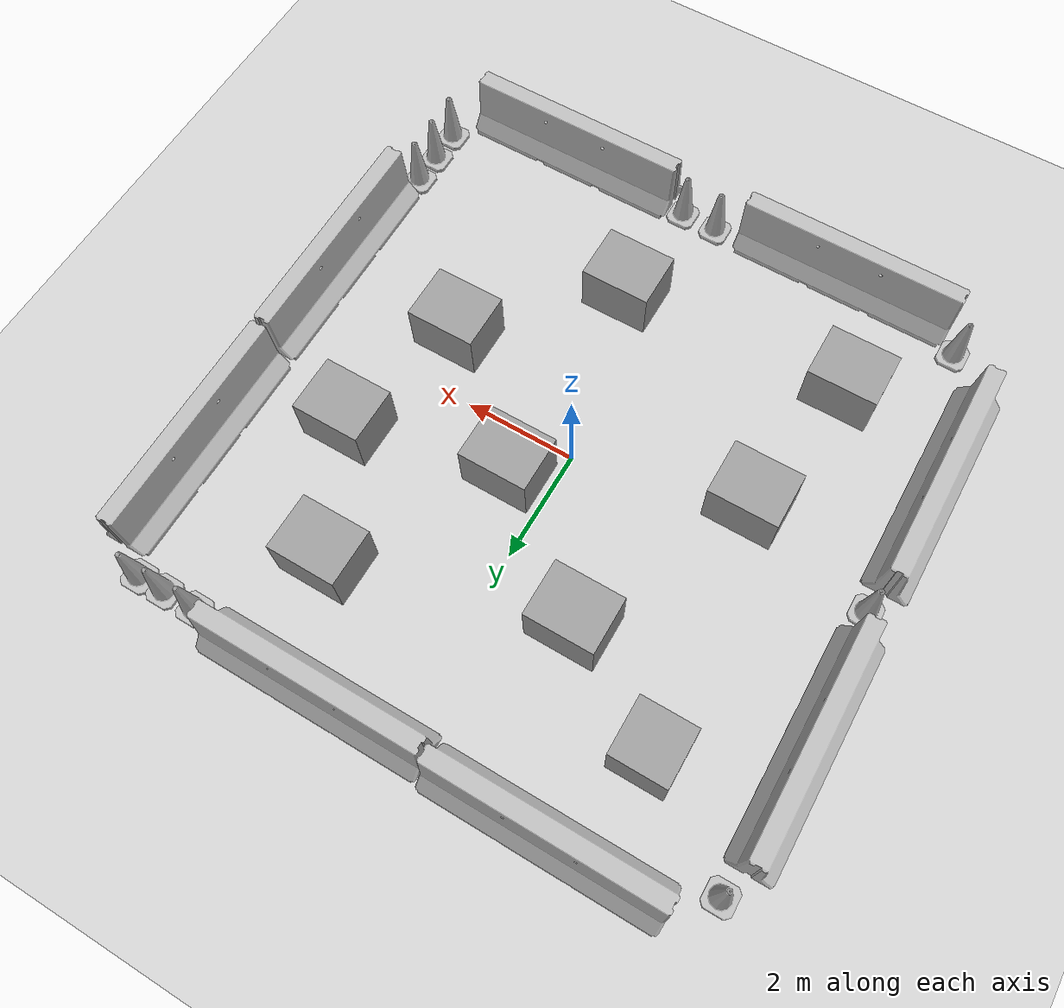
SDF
<sdf version="1.6">
 <world name="default">
  <light name="sun" type="directional">
   <pose>0 0 10 0 -0 0</pose>
   <diffuse>0.8 0.8 0.8 1</diffuse>
   <specular>0.2 0.2 0.2 1</specular>
   <attenuation>
    <range>1000</range>
    <constant>0.9</constant>
    <linear>0.01</linear>
    <quadratic>0.001</quadratic>
   </attenuation>
   <direction>-0.5 0.1 -0.9</direction>
  </light>
  <model name="ground_plane">
   <static>1</static>
   <link name="link">
    <collision name="collision">
     <geometry><plane><normal>0 0 1</normal><size>100 100</size></plane></geometry>
     <surface>
      <contact><collide_bitmask>65535</collide_bitmask></contact>
      <friction><ode><mu>100</mu><mu2>50</mu2></ode></friction>
     </surface>
    </collision>
    <visual name="visual">
     <cast_shadows>0</cast_shadows>
     <geometry><plane><normal>0 0 1</normal><size>100 100</size></plane></geometry>
     <material>
      <script><uri>file://media/materials/scripts/gazebo.material</uri><name>Gazebo/Grey</name></script>
     </material>
    </visual>
   </link>
  </model>
  <gravity>0 0 -9.8</gravity>
  <magnetic_field>6e-06 2.3e-05 -4.2e-05</magnetic_field>
  <atmosphere type="adiabatic"/>
  <physics name="default_physics" default="0" type="ode">
   <max_step_size>0.001</max_step_size>
   <real_time_factor>1</real_time_factor>
   <real_time_update_rate>1000</real_time_update_rate>
  </physics>
  <scene><ambient>0.4 0.4 0.4 1</ambient><background>0.7 0.7 0.7 1</background><shadows>1</shadows></scene>
  <spherical_coordinates>
   <surface_model>EARTH_WGS84</surface_model>
   <latitude_deg>0</latitude_deg>
   <longitude_deg>0</longitude_deg>
   <elevation>0</elevation>
   <heading_deg>0</heading_deg>
  </spherical_coordinates>
  <model name="jersey_barrier">
   <static>1</static>
   <link name="link">
    <visual name="visual">
     <geometry><mesh><uri>model://jersey_barrier/meshes/jersey_barrier.dae</uri></mesh></geometry>
    </visual>
    <collision name="upright">
     <pose>0 0 0.5715 0 -0 0</pose>
     <geometry><box><size>4.06542 0.3063 1.143</size></box></geometry>
    </collision>
    <collision name="base">
     <pose>0 0 0.032258 0 -0 0</pose>
     <geometry><box><size>4.06542 0.8107 0.064516</size></box></geometry>
    </collision>
    <collision name="base2">
     <pose>0 0 0.1 0 -0 0</pose>
     <geometry><box><size>4.06542 0.65 0.1</size></box></geometry>
    </collision>
    <collision name="base3">
     <pose>0 0 0.2 0 -0 0</pose>
     <geometry><box><size>4.06542 0.5 0.1</size></box></geometry>
    </collision>
    <collision name="left-angle">
     <pose>0 -0.224 0.2401 0.9 -0 0</pose>
     <geometry><box><size>4.06542 0.5 0.064516</size></box></geometry>
    </collision>
    <collision name="right-angle">
     <pose>0 0.224 0.2401 -0.9 0 0</pose>
     <geometry><box><size>4.06542 0.5 0.064516</size></box></geometry>
    </collision>
   </link>
   <pose>-2.71751 5.43697 0 0 -0 0</pose>
  </model>
  <model name="unit_box">
   <pose>2.46443 3.52051 0.5 0 -0 0</pose>
   <link name="link">
    <inertial>
     <mass>1</mass>
     <inertia>
      <ixx>0.166667</ixx>
      <ixy>0</ixy>
      <ixz>0</ixz>
      <iyy>0.166667</iyy>
      <iyz>0</iyz>
      <izz>0.166667</izz>
     </inertia>
    </inertial>
    <collision name="collision"><geometry><box><size>1.23573 1 1</size></box></geometry></collision>
    <visual name="visual">
     <geometry><box><size>1.23573 1 1</size></box></geometry>
     <material>
      <script><name>Gazebo/Grey</name><uri>file://media/materials/scripts/gazebo.material</uri></script>
     </material>
    </visual>
   </link>
  </model>
  <model name="jersey_barrier_clone">
   <static>1</static>
   <link name="link">
    <visual name="visual">
     <geometry><mesh><uri>model://jersey_barrier/meshes/jersey_barrier.dae</uri></mesh></geometry>
    </visual>
    <collision name="upright">
     <pose>0 0 0.5715 0 -0 0</pose>
     <geometry><box><size>4.06542 0.3063 1.143</size></box></geometry>
    </collision>
    <collision name="base">
     <pose>0 0 0.032258 0 -0 0</pose>
     <geometry><box><size>4.06542 0.8107 0.064516</size></box></geometry>
    </collision>
    <collision name="base2">
     <pose>0 0 0.1 0 -0 0</pose>
     <geometry><box><size>4.06542 0.65 0.1</size></box></geometry>
    </collision>
    <collision name="base3">
     <pose>0 0 0.2 0 -0 0</pose>
     <geometry><box><size>4.06542 0.5 0.1</size></box></geometry>
    </collision>
    <collision name="left-angle">
     <pose>0 -0.224 0.2401 0.9 -0 0</pose>
     <geometry><box><size>4.06542 0.5 0.064516</size></box></geometry>
    </collision>
    <collision name="right-angle">
     <pose>0 0.224 0.2401 -0.9 0 0</pose>
     <geometry><box><size>4.06542 0.5 0.064516</size></box></geometry>
    </collision>
   </link>
   <pose>1.38475 5.37101 0 0 -0 0</pose>
  </model>
  <model name="Construction Cone">
   <link name="link">
    <collision name="collision">
     <geometry>
      <mesh><scale>10 10 10</scale><uri>model://construction_cone/meshes/construction_cone.dae</uri></mesh>
     </geometry>
    </collision>
    <visual name="visual">
     <geometry>
      <mesh><scale>10 10 10</scale><uri>model://construction_cone/meshes/construction_cone.dae</uri></mesh>
     </geometry>
    </visual>
    <inertial>
     <inertia><ixx>1</ixx><ixy>0</ixy><ixz>0</ixz><iyy>1</iyy><iyz>0</iyz><izz>1</izz></inertia>
     <mass>1</mass>
    </inertial>
   </link>
   <pose>3.81705 5.25709 0 0 -0 0</pose>
  </model>
  <model name="Construction Cone_clone">
   <link name="link">
    <collision name="collision">
     <geometry>
      <mesh><scale>10 10 10</scale><uri>model://construction_cone/meshes/construction_cone.dae</uri></mesh>
     </geometry>
    </collision>
    <visual name="visual">
     <geometry>
      <mesh><scale>10 10 10</scale><uri>model://construction_cone/meshes/construction_cone.dae</uri></mesh>
     </geometry>
    </visual>
    <inertial>
     <inertia><ixx>1</ixx><ixy>0</ixy><ixz>0</ixz><iyy>1</iyy><iyz>0</iyz><izz>1</izz></inertia>
     <mass>1</mass>
    </inertial>
   </link>
   <pose>4.40577 5.26057 0 0 0 -0.000672</pose>
  </model>
  <model name="Construction Cone_clone_0">
   <link name="link">
    <collision name="collision">
     <geometry>
      <mesh><scale>10 10 10</scale><uri>model://construction_cone/meshes/construction_cone.dae</uri></mesh>
     </geometry>
    </collision>
    <visual name="visual">
     <geometry>
      <mesh><scale>10 10 10</scale><uri>model://construction_cone/meshes/construction_cone.dae</uri></mesh>
     </geometry>
    </visual>
    <inertial>
     <inertia><ixx>1</ixx><ixy>0</ixy><ixz>0</ixz><iyy>1</iyy><iyz>0</iyz><izz>1</izz></inertia>
     <mass>1</mass>
    </inertial>
   </link>
   <pose>4.90896 5.26686 -5e-06 -4e-06 1e-06 0.000794</pose>
  </model>
  <model name="Construction Cone_clone_0_clone">
   <link name="link">
    <collision name="collision">
     <geometry>
      <mesh><scale>10 10 10</scale><uri>model://construction_cone/meshes/construction_cone.dae</uri></mesh>
     </geometry>
    </collision>
    <visual name="visual">
     <geometry>
      <mesh><scale>10 10 10</scale><uri>model://construction_cone/meshes/construction_cone.dae</uri></mesh>
     </geometry>
    </visual>
    <inertial>
     <inertia><ixx>1</ixx><ixy>0</ixy><ixz>0</ixz><iyy>1</iyy><iyz>0</iyz><izz>1</izz></inertia>
     <mass>1</mass>
    </inertial>
   </link>
   <pose>-5.29413 4.89509 0 0 -0 0.000794</pose>
  </model>
  <model name="Construction Cone_clone_0_clone_clone">
   <link name="link">
    <collision name="collision">
     <geometry>
      <mesh><scale>10 10 10</scale><uri>model://construction_cone/meshes/construction_cone.dae</uri></mesh>
     </geometry>
    </collision>
    <visual name="visual">
     <geometry>
      <mesh><scale>10 10 10</scale><uri>model://construction_cone/meshes/construction_cone.dae</uri></mesh>
     </geometry>
    </visual>
    <inertial>
     <inertia><ixx>1</ixx><ixy>0</ixy><ixz>0</ixz><iyy>1</iyy><iyz>0</iyz><izz>1</izz></inertia>
     <mass>1</mass>
    </inertial>
   </link>
   <pose>-5.35264 -0.014736 -1e-06 3e-06 -1e-06 0.000794</pose>
  </model>
  <model name="Construction Cone_clone_0_clone_clone_0">
   <link name="link">
    <collision name="collision">
     <geometry>
      <mesh><scale>10 10 10</scale><uri>model://construction_cone/meshes/construction_cone.dae</uri></mesh>
     </geometry>
    </collision>
    <visual name="visual">
     <geometry>
      <mesh><scale>10 10 10</scale><uri>model://construction_cone/meshes/construction_cone.dae</uri></mesh>
     </geometry>
    </visual>
    <inertial>
     <inertia><ixx>1</ixx><ixy>0</ixy><ixz>0</ixz><iyy>1</iyy><iyz>0</iyz><izz>1</izz></inertia>
     <mass>1</mass>
    </inertial>
   </link>
   <pose>-4.75474 -4.99205 0 0 -1e-06 0.000333</pose>
  </model>
  <model name="jersey_barrier_clone_clone">
   <static>1</static>
   <link name="link">
    <visual name="visual">
     <geometry><mesh><uri>model://jersey_barrier/meshes/jersey_barrier.dae</uri></mesh></geometry>
    </visual>
    <collision name="upright">
     <pose>0 0 0.5715 0 -0 0</pose>
     <geometry><box><size>4.06542 0.3063 1.143</size></box></geometry>
    </collision>
    <collision name="base">
     <pose>0 0 0.032258 0 -0 0</pose>
     <geometry><box><size>4.06542 0.8107 0.064516</size></box></geometry>
    </collision>
    <collision name="base2">
     <pose>0 0 0.1 0 -0 0</pose>
     <geometry><box><size>4.06542 0.65 0.1</size></box></geometry>
    </collision>
    <collision name="base3">
     <pose>0 0 0.2 0 -0 0</pose>
     <geometry><box><size>4.06542 0.5 0.1</size></box></geometry>
    </collision>
    <collision name="left-angle">
     <pose>0 -0.224 0.2401 0.9 -0 0</pose>
     <geometry><box><size>4.06542 0.5 0.064516</size></box></geometry>
    </collision>
    <collision name="right-angle">
     <pose>0 0.224 0.2401 -0.9 0 0</pose>
     <geometry><box><size>4.06542 0.5 0.064516</size></box></geometry>
    </collision>
   </link>
   <pose>-5.47412 2.41621 0 0 0 -1.56571</pose>
  </model>
  <model name="jersey_barrier_clone_clone_clone">
   <static>1</static>
   <link name="link">
    <visual name="visual">
     <geometry><mesh><uri>model://jersey_barrier/meshes/jersey_barrier.dae</uri></mesh></geometry>
    </visual>
    <collision name="upright">
     <pose>0 0 0.5715 0 -0 0</pose>
     <geometry><box><size>4.06542 0.3063 1.143</size></box></geometry>
    </collision>
    <collision name="base">
     <pose>0 0 0.032258 0 -0 0</pose>
     <geometry><box><size>4.06542 0.8107 0.064516</size></box></geometry>
    </collision>
    <collision name="base2">
     <pose>0 0 0.1 0 -0 0</pose>
     <geometry><box><size>4.06542 0.65 0.1</size></box></geometry>
    </collision>
    <collision name="base3">
     <pose>0 0 0.2 0 -0 0</pose>
     <geometry><box><size>4.06542 0.5 0.1</size></box></geometry>
    </collision>
    <collision name="left-angle">
     <pose>0 -0.224 0.2401 0.9 -0 0</pose>
     <geometry><box><size>4.06542 0.5 0.064516</size></box></geometry>
    </collision>
    <collision name="right-angle">
     <pose>0 0.224 0.2401 -0.9 0 0</pose>
     <geometry><box><size>4.06542 0.5 0.064516</size></box></geometry>
    </collision>
   </link>
   <pose>-5.45765 -2.41572 0 0 0 -1.56571</pose>
  </model>
  <model name="jersey_barrier_clone_clone_0">
   <static>1</static>
   <link name="link">
    <visual name="visual">
     <geometry><mesh><uri>model://jersey_barrier/meshes/jersey_barrier.dae</uri></mesh></geometry>
    </visual>
    <collision name="upright">
     <pose>0 0 0.5715 0 -0 0</pose>
     <geometry><box><size>4.06542 0.3063 1.143</size></box></geometry>
    </collision>
    <collision name="base">
     <pose>0 0 0.032258 0 -0 0</pose>
     <geometry><box><size>4.06542 0.8107 0.064516</size></box></geometry>
    </collision>
    <collision name="base2">
     <pose>0 0 0.1 0 -0 0</pose>
     <geometry><box><size>4.06542 0.65 0.1</size></box></geometry>
    </collision>
    <collision name="base3">
     <pose>0 0 0.2 0 -0 0</pose>
     <geometry><box><size>4.06542 0.5 0.1</size></box></geometry>
    </collision>
    <collision name="left-angle">
     <pose>0 -0.224 0.2401 0.9 -0 0</pose>
     <geometry><box><size>4.06542 0.5 0.064516</size></box></geometry>
    </collision>
    <collision name="right-angle">
     <pose>0 0.224 0.2401 -0.9 0 0</pose>
     <geometry><box><size>4.06542 0.5 0.064516</size></box></geometry>
    </collision>
   </link>
   <pose>2.97227 -5.40212 0 0 -0 0</pose>
  </model>
  <model name="jersey_barrier_clone_clone_0_clone">
   <static>1</static>
   <link name="link">
    <visual name="visual">
     <geometry><mesh><uri>model://jersey_barrier/meshes/jersey_barrier.dae</uri></mesh></geometry>
    </visual>
    <collision name="upright">
     <pose>0 0 0.5715 0 -0 0</pose>
     <geometry><box><size>4.06542 0.3063 1.143</size></box></geometry>
    </collision>
    <collision name="base">
     <pose>0 0 0.032258 0 -0 0</pose>
     <geometry><box><size>4.06542 0.8107 0.064516</size></box></geometry>
    </collision>
    <collision name="base2">
     <pose>0 0 0.1 0 -0 0</pose>
     <geometry><box><size>4.06542 0.65 0.1</size></box></geometry>
    </collision>
    <collision name="base3">
     <pose>0 0 0.2 0 -0 0</pose>
     <geometry><box><size>4.06542 0.5 0.1</size></box></geometry>
    </collision>
    <collision name="left-angle">
     <pose>0 -0.224 0.2401 0.9 -0 0</pose>
     <geometry><box><size>4.06542 0.5 0.064516</size></box></geometry>
    </collision>
    <collision name="right-angle">
     <pose>0 0.224 0.2401 -0.9 0 0</pose>
     <geometry><box><size>4.06542 0.5 0.064516</size></box></geometry>
    </collision>
   </link>
   <pose>-2.47051 -5.43645 0 0 -0 0</pose>
  </model>
  <model name="Construction Cone_clone_0_clone_clone_0_clone">
   <link name="link">
    <collision name="collision">
     <geometry>
      <mesh><scale>10 10 10</scale><uri>model://construction_cone/meshes/construction_cone.dae</uri></mesh>
     </geometry>
    </collision>
    <visual name="visual">
     <geometry>
      <mesh><scale>10 10 10</scale><uri>model://construction_cone/meshes/construction_cone.dae</uri></mesh>
     </geometry>
    </visual>
    <inertial>
     <inertia><ixx>1</ixx><ixy>0</ixy><ixz>0</ixz><iyy>1</iyy><iyz>0</iyz><izz>1</izz></inertia>
     <mass>1</mass>
    </inertial>
   </link>
   <pose>0.669272 -5.26812 0 0 -0 0.000333</pose>
  </model>
  <model name="Construction Cone_clone_0_clone_clone_0_clone_0">
   <link name="link">
    <collision name="collision">
     <geometry>
      <mesh><scale>10 10 10</scale><uri>model://construction_cone/meshes/construction_cone.dae</uri></mesh>
     </geometry>
    </collision>
    <visual name="visual">
     <geometry>
      <mesh><scale>10 10 10</scale><uri>model://construction_cone/meshes/construction_cone.dae</uri></mesh>
     </geometry>
    </visual>
    <inertial>
     <inertia><ixx>1</ixx><ixy>0</ixy><ixz>0</ixz><iyy>1</iyy><iyz>0</iyz><izz>1</izz></inertia>
     <mass>1</mass>
    </inertial>
   </link>
   <pose>0.004623 -5.25665 0 0 -0 0.000333</pose>
  </model>
  <model name="jersey_barrier_clone_clone_clone_0">
   <static>1</static>
   <link name="link">
    <visual name="visual">
     <geometry><mesh><uri>model://jersey_barrier/meshes/jersey_barrier.dae</uri></mesh></geometry>
    </visual>
    <collision name="upright">
     <pose>0 0 0.5715 0 -0 0</pose>
     <geometry><box><size>4.06542 0.3063 1.143</size></box></geometry>
    </collision>
    <collision name="base">
     <pose>0 0 0.032258 0 -0 0</pose>
     <geometry><box><size>4.06542 0.8107 0.064516</size></box></geometry>
    </collision>
    <collision name="base2">
     <pose>0 0 0.1 0 -0 0</pose>
     <geometry><box><size>4.06542 0.65 0.1</size></box></geometry>
    </collision>
    <collision name="base3">
     <pose>0 0 0.2 0 -0 0</pose>
     <geometry><box><size>4.06542 0.5 0.1</size></box></geometry>
    </collision>
    <collision name="left-angle">
     <pose>0 -0.224 0.2401 0.9 -0 0</pose>
     <geometry><box><size>4.06542 0.5 0.064516</size></box></geometry>
    </collision>
    <collision name="right-angle">
     <pose>0 0.224 0.2401 -0.9 0 0</pose>
     <geometry><box><size>4.06542 0.5 0.064516</size></box></geometry>
    </collision>
   </link>
   <pose>5.43581 2.94965 0 0 0 -1.56571</pose>
  </model>
  <model name="jersey_barrier_clone_clone_clone_1">
   <static>1</static>
   <link name="link">
    <visual name="visual">
     <geometry><mesh><uri>model://jersey_barrier/meshes/jersey_barrier.dae</uri></mesh></geometry>
    </visual>
    <collision name="upright">
     <pose>0 0 0.5715 0 -0 0</pose>
     <geometry><box><size>4.06542 0.3063 1.143</size></box></geometry>
    </collision>
    <collision name="base">
     <pose>0 0 0.032258 0 -0 0</pose>
     <geometry><box><size>4.06542 0.8107 0.064516</size></box></geometry>
    </collision>
    <collision name="base2">
     <pose>0 0 0.1 0 -0 0</pose>
     <geometry><box><size>4.06542 0.65 0.1</size></box></geometry>
    </collision>
    <collision name="base3">
     <pose>0 0 0.2 0 -0 0</pose>
     <geometry><box><size>4.06542 0.5 0.1</size></box></geometry>
    </collision>
    <collision name="left-angle">
     <pose>0 -0.224 0.2401 0.9 -0 0</pose>
     <geometry><box><size>4.06542 0.5 0.064516</size></box></geometry>
    </collision>
    <collision name="right-angle">
     <pose>0 0.224 0.2401 -0.9 0 0</pose>
     <geometry><box><size>4.06542 0.5 0.064516</size></box></geometry>
    </collision>
   </link>
   <pose>5.47437 -1.17736 0 0 0 -1.56571</pose>
  </model>
  <model name="Construction Cone_clone_0_clone_clone_0_clone_clone">
   <link name="link">
    <collision name="collision">
     <geometry>
      <mesh><scale>10 10 10</scale><uri>model://construction_cone/meshes/construction_cone.dae</uri></mesh>
     </geometry>
    </collision>
    <visual name="visual">
     <geometry>
      <mesh><scale>10 10 10</scale><uri>model://construction_cone/meshes/construction_cone.dae</uri></mesh>
     </geometry>
    </visual>
    <inertial>
     <inertia><ixx>1</ixx><ixy>0</ixy><ixz>0</ixz><iyy>1</iyy><iyz>0</iyz><izz>1</izz></inertia>
     <mass>1</mass>
    </inertial>
   </link>
   <pose>5.27606 -3.50542 0 0 -0 0.000333</pose>
  </model>
  <model name="Construction Cone_clone_0_clone_clone_0_clone_clone_0">
   <link name="link">
    <collision name="collision">
     <geometry>
      <mesh><scale>10 10 10</scale><uri>model://construction_cone/meshes/construction_cone.dae</uri></mesh>
     </geometry>
    </collision>
    <visual name="visual">
     <geometry>
      <mesh><scale>10 10 10</scale><uri>model://construction_cone/meshes/construction_cone.dae</uri></mesh>
     </geometry>
    </visual>
    <inertial>
     <inertia><ixx>1</ixx><ixy>0</ixy><ixz>0</ixz><iyy>1</iyy><iyz>0</iyz><izz>1</izz></inertia>
     <mass>1</mass>
    </inertial>
   </link>
   <pose>5.2793 -4.07937 0 0 -1e-06 0.000333</pose>
  </model>
  <model name="Construction Cone_clone_0_clone_clone_0_clone_clone_1">
   <link name="link">
    <collision name="collision">
     <geometry>
      <mesh><scale>10 10 10</scale><uri>model://construction_cone/meshes/construction_cone.dae</uri></mesh>
     </geometry>
    </collision>
    <visual name="visual">
     <geometry>
      <mesh><scale>10 10 10</scale><uri>model://construction_cone/meshes/construction_cone.dae</uri></mesh>
     </geometry>
    </visual>
    <inertial>
     <inertia><ixx>1</ixx><ixy>0</ixy><ixz>0</ixz><iyy>1</iyy><iyz>0</iyz><izz>1</izz></inertia>
     <mass>1</mass>
    </inertial>
   </link>
   <pose>5.28274 -4.66847 0 0 -0 0.000333</pose>
  </model>
  <model name="unit_box_clone">
   <pose>-1.47021 2.46745 0.5 0 -0 0</pose>
   <link name="link">
    <inertial>
     <mass>1</mass>
     <inertia>
      <ixx>0.166667</ixx>
      <ixy>0</ixy>
      <ixz>0</ixz>
      <iyy>0.166667</iyy>
      <iyz>0</iyz>
      <izz>0.166667</izz>
     </inertia>
    </inertial>
    <collision name="collision"><geometry><box><size>1.23573 1 1</size></box></geometry></collision>
    <visual name="visual">
     <geometry><box><size>1.23573 1 1</size></box></geometry>
     <material>
      <script><name>Gazebo/Grey</name><uri>file://media/materials/scripts/gazebo.material</uri></script>
     </material>
    </visual>
   </link>
  </model>
  <model name="unit_box_clone_clone">
   <pose>2.87326 -1.0569 0.5 0 -0 0</pose>
   <link name="link">
    <inertial>
     <mass>1</mass>
     <inertia>
      <ixx>0.166667</ixx>
      <ixy>0</ixy>
      <ixz>0</ixz>
      <iyy>0.166667</iyy>
      <iyz>0</iyz>
      <izz>0.166667</izz>
     </inertia>
    </inertial>
    <collision name="collision"><geometry><box><size>1.23573 1 1</size></box></geometry></collision>
    <visual name="visual">
     <geometry><box><size>1.23573 1 1</size></box></geometry>
     <material>
      <script><name>Gazebo/Grey</name><uri>file://media/materials/scripts/gazebo.material</uri></script>
     </material>
    </visual>
   </link>
  </model>
  <model name="unit_box_clone_clone_0">
   <pose>-2.94526 -0.699071 0.499995 0 -7e-06 0</pose>
   <link name="link">
    <inertial>
     <mass>1</mass>
     <inertia>
      <ixx>0.166667</ixx>
      <ixy>0</ixy>
      <ixz>0</ixz>
      <iyy>0.166667</iyy>
      <iyz>0</iyz>
      <izz>0.166667</izz>
     </inertia>
    </inertial>
    <collision name="collision"><geometry><box><size>1.23573 1 1</size></box></geometry></collision>
    <visual name="visual">
     <geometry><box><size>1.23573 1 1</size></box></geometry>
     <material>
      <script><name>Gazebo/Grey</name><uri>file://media/materials/scripts/gazebo.material</uri></script>
     </material>
    </visual>
   </link>
  </model>
  <model name="unit_box_clone_clone_1">
   <pose>0.761718 0.728393 0.499995 -1e-05 0 0</pose>
   <link name="link">
    <inertial>
     <mass>1</mass>
     <inertia>
      <ixx>0.166667</ixx>
      <ixy>0</ixy>
      <ixz>0</ixz>
      <iyy>0.166667</iyy>
      <iyz>0</iyz>
      <izz>0.166667</izz>
     </inertia>
    </inertial>
    <collision name="collision"><geometry><box><size>1.23573 1 1</size></box></geometry></collision>
    <visual name="visual">
     <geometry><box><size>1.23573 1 1</size></box></geometry>
     <material>
      <script><name>Gazebo/Grey</name><uri>file://media/materials/scripts/gazebo.material</uri></script>
     </material>
    </visual>
   </link>
  </model>
  <model name="unit_box_clone_clone_2">
   <pose>0.740602 -3.22941 0.5 0 -0 0</pose>
   <link name="link">
    <inertial>
     <mass>1</mass>
     <inertia>
      <ixx>0.166667</ixx>
      <ixy>0</ixy>
      <ixz>0</ixz>
      <iyy>0.166667</iyy>
      <iyz>0</iyz>
      <izz>0.166667</izz>
     </inertia>
    </inertial>
    <collision name="collision"><geometry><box><size>1.23573 1 1</size></box></geometry></collision>
    <visual name="visual">
     <geometry><box><size>1.23573 1 1</size></box></geometry>
     <material>
      <script><name>Gazebo/Grey</name><uri>file://media/materials/scripts/gazebo.material</uri></script>
     </material>
    </visual>
   </link>
  </model>
  <model name="unit_box_clone_clone_3">
   <pose>3.52426 1.35002 0.499995 0 -7e-06 0</pose>
   <link name="link">
    <inertial>
     <mass>1</mass>
     <inertia>
      <ixx>0.166667</ixx>
      <ixy>0</ixy>
      <ixz>0</ixz>
      <iyy>0.166667</iyy>
      <iyz>0</iyz>
      <izz>0.166667</izz>
     </inertia>
    </inertial>
    <collision name="collision"><geometry><box><size>1.23573 1 1</size></box></geometry></collision>
    <visual name="visual">
     <geometry><box><size>1.23573 1 1</size></box></geometry>
     <material>
      <script><name>Gazebo/Grey</name><uri>file://media/materials/scripts/gazebo.material</uri></script>
     </material>
    </visual>
   </link>
  </model>
  <model name="unit_box_clone_clone_4">
   <pose>-3.39567 -3.40419 0.5 0 -0 0</pose>
   <link name="link">
    <inertial>
     <mass>1</mass>
     <inertia>
      <ixx>0.166667</ixx>
      <ixy>0</ixy>
      <ixz>0</ixz>
      <iyy>0.166667</iyy>
      <iyz>0</iyz>
      <izz>0.166667</izz>
     </inertia>
    </inertial>
    <collision name="collision"><geometry><box><size>1.23573 1 1</size></box></geometry></collision>
    <visual name="visual">
     <geometry><box><size>1.23573 1 1</size></box></geometry>
     <material>
      <script><name>Gazebo/Grey</name><uri>file://media/materials/scripts/gazebo.material</uri></script>
     </material>
    </visual>
   </link>
  </model>
  <model name="unit_box_0">
   <pose>-3.45247 3.62777 0.5 0 -0 0</pose>
   <link name="link">
    <inertial>
     <mass>1</mass>
     <inertia>
      <ixx>0.166667</ixx>
      <ixy>0</ixy>
      <ixz>0</ixz>
      <iyy>0.166667</iyy>
      <iyz>0</iyz>
      <izz>0.166667</izz>
     </inertia>
    </inertial>
    <collision name="collision"><geometry><box><size>1 1 1</size></box></geometry></collision>
    <visual name="visual">
     <geometry><box><size>1 1 1</size></box></geometry>
     <material>
      <script><name>Gazebo/Grey</name><uri>file://media/materials/scripts/gazebo.material</uri></script>
     </material>
    </visual>
   </link>
  </model>
 </world>
</sdf>
